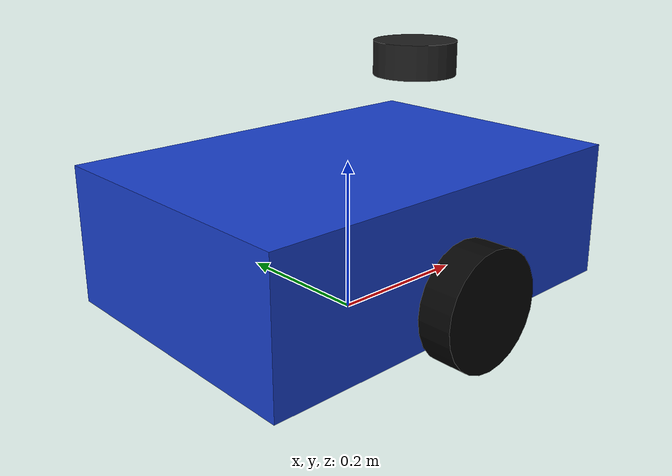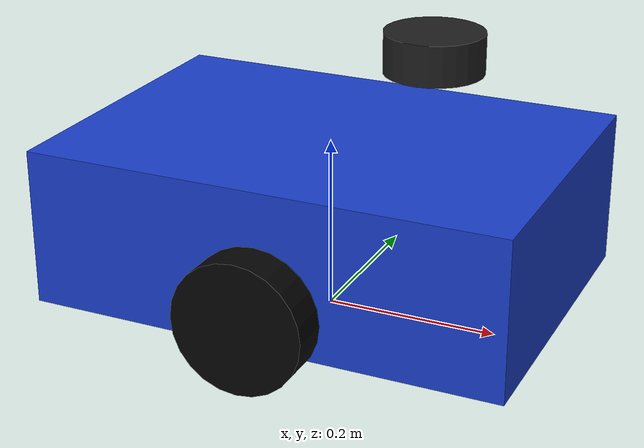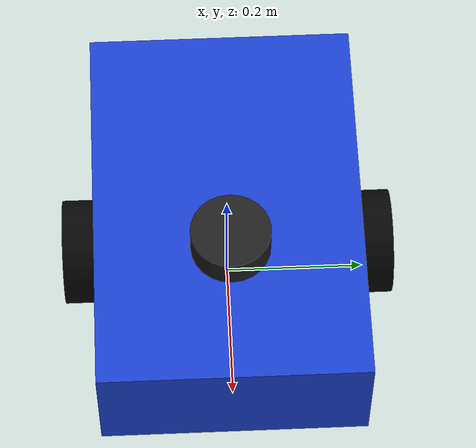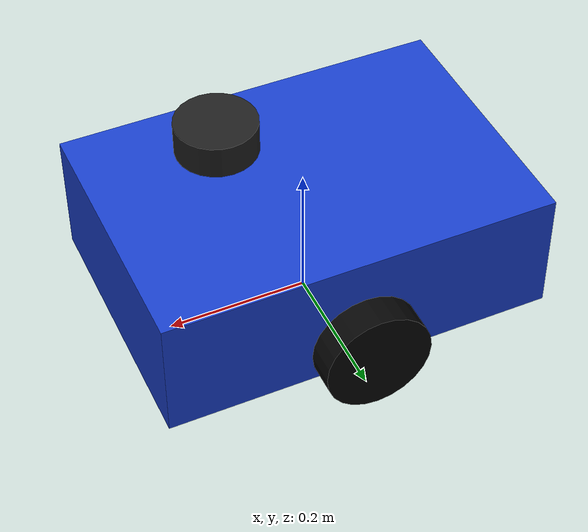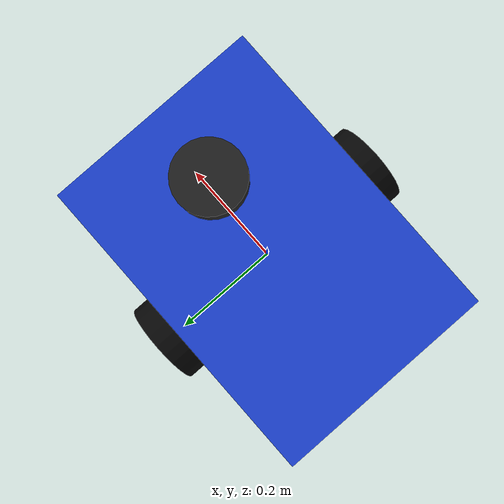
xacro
<?xml version="1.0"?>
<robot name="warehouse_bot" xmlns:xacro="http://www.ros.org/wiki/xacro">

  <xacro:property name="base_length" value="0.55"/>
  <xacro:property name="base_width" value="0.38"/>
  <xacro:property name="base_height" value="0.18"/>

  <xacro:property name="wheel_radius" value="0.075"/>
  <xacro:property name="wheel_width" value="0.045"/>

  <xacro:property name="caster_radius" value="0.045"/>
  <xacro:property name="lidar_radius" value="0.055"/>
  <xacro:property name="lidar_height" value="0.045"/>

  <link name="base_link">
    <visual>
      <origin xyz="0 0 0.12" rpy="0 0 0"/>
      <geometry>
        <box size="${base_length} ${base_width} ${base_height}"/>
      </geometry>
      <material name="blue">
        <color rgba="0.1 0.25 0.8 1.0"/>
      </material>
    </visual>

    <collision>
      <origin xyz="0 0 0.12" rpy="0 0 0"/>
      <geometry>
        <box size="${base_length} ${base_width} ${base_height}"/>
      </geometry>
    </collision>

    <inertial>
      <origin xyz="0 0 0.12" rpy="0 0 0"/>
      <mass value="8.0"/>
      <inertia ixx="0.12" ixy="0.0" ixz="0.0"
               iyy="0.22" iyz="0.0"
               izz="0.28"/>
    </inertial>
  </link>

  <link name="left_wheel_link">
    <visual>
      <origin xyz="0 0 0" rpy="1.5708 0 0"/>
      <geometry>
        <cylinder radius="${wheel_radius}" length="${wheel_width}"/>
      </geometry>
      <material name="black">
        <color rgba="0.02 0.02 0.02 1.0"/>
      </material>
    </visual>

    <collision>
      <origin xyz="0 0 0" rpy="1.5708 0 0"/>
      <geometry>
        <cylinder radius="${wheel_radius}" length="${wheel_width}"/>
      </geometry>
    </collision>

    <inertial>
      <origin xyz="0 0 0" rpy="0 0 0"/>
      <mass value="0.6"/>
      <inertia ixx="0.002" ixy="0.0" ixz="0.0"
               iyy="0.002" iyz="0.0"
               izz="0.003"/>
    </inertial>
  </link>

  <link name="right_wheel_link">
    <visual>
      <origin xyz="0 0 0" rpy="1.5708 0 0"/>
      <geometry>
        <cylinder radius="${wheel_radius}" length="${wheel_width}"/>
      </geometry>
      <material name="black">
        <color rgba="0.02 0.02 0.02 1.0"/>
      </material>
    </visual>

    <collision>
      <origin xyz="0 0 0" rpy="1.5708 0 0"/>
      <geometry>
        <cylinder radius="${wheel_radius}" length="${wheel_width}"/>
      </geometry>
    </collision>

    <inertial>
      <origin xyz="0 0 0" rpy="0 0 0"/>
      <mass value="0.6"/>
      <inertia ixx="0.002" ixy="0.0" ixz="0.0"
               iyy="0.002" iyz="0.0"
               izz="0.003"/>
    </inertial>
  </link>

  <link name="caster_link">
    <visual>
      <origin xyz="0 0 0" rpy="0 0 0"/>
      <geometry>
        <sphere radius="${caster_radius}"/>
      </geometry>
      <material name="gray">
        <color rgba="0.45 0.45 0.45 1.0"/>
      </material>
    </visual>

    <collision>
      <origin xyz="0 0 0" rpy="0 0 0"/>
      <geometry>
        <sphere radius="${caster_radius}"/>
      </geometry>
    </collision>

    <inertial>
      <origin xyz="0 0 0" rpy="0 0 0"/>
      <mass value="0.25"/>
      <inertia ixx="0.0003" ixy="0.0" ixz="0.0"
               iyy="0.0003" iyz="0.0"
               izz="0.0003"/>
    </inertial>
  </link>

  <link name="lidar_link">
    <visual>
      <origin xyz="0 0 0" rpy="0 0 0"/>
      <geometry>
        <cylinder radius="${lidar_radius}" length="${lidar_height}"/>
      </geometry>
      <material name="dark_gray">
        <color rgba="0.12 0.12 0.12 1.0"/>
      </material>
    </visual>

    <collision>
      <origin xyz="0 0 0" rpy="0 0 0"/>
      <geometry>
        <cylinder radius="${lidar_radius}" length="${lidar_height}"/>
      </geometry>
    </collision>

    <inertial>
      <origin xyz="0 0 0" rpy="0 0 0"/>
      <mass value="0.3"/>
      <inertia ixx="0.0004" ixy="0.0" ixz="0.0"
               iyy="0.0004" iyz="0.0"
               izz="0.0004"/>
    </inertial>
  </link>

  <joint name="left_wheel_joint" type="continuous">
    <parent link="base_link"/>
    <child link="left_wheel_link"/>
    <origin xyz="0 0.215 0.075" rpy="0 0 0"/>
    <axis xyz="0 1 0"/>
  </joint>

  <joint name="right_wheel_joint" type="continuous">
    <parent link="base_link"/>
    <child link="right_wheel_link"/>
    <origin xyz="0 -0.215 0.075" rpy="0 0 0"/>
    <axis xyz="0 1 0"/>
  </joint>

  <joint name="caster_joint" type="fixed">
    <parent link="base_link"/>
    <child link="caster_link"/>
    <origin xyz="0.22 0 0.045" rpy="0 0 0"/>
  </joint>

  <joint name="lidar_joint" type="fixed">
    <parent link="base_link"/>
    <child link="lidar_link"/>
    <origin xyz="0.12 0 0.32" rpy="0 0 0"/>
  </joint>

  <gazebo>
    <plugin name="diff_drive_controller" filename="libgazebo_ros_diff_drive.so">
      <ros>
        <namespace>/</namespace>
      </ros>

      <left_joint>left_wheel_joint</left_joint>
      <right_joint>right_wheel_joint</right_joint>

      <wheel_separation>0.43</wheel_separation>
      <wheel_diameter>0.15</wheel_diameter>

      <max_wheel_torque>20</max_wheel_torque>
      <max_wheel_acceleration>1.0</max_wheel_acceleration>

      <command_topic>cmd_vel</command_topic>
      <odometry_topic>odom</odometry_topic>
      <odometry_frame>odom</odometry_frame>
      <robot_base_frame>base_link</robot_base_frame>

      <publish_odom>true</publish_odom>
      <publish_odom_tf>true</publish_odom_tf>
      <publish_wheel_tf>true</publish_wheel_tf>
    </plugin>
  </gazebo>
    <gazebo reference="lidar_link">
    <sensor name="lidar_sensor" type="ray">
      <pose>0 0 0 0 0 0</pose>
      <visualize>true</visualize>
      <update_rate>10</update_rate>

      <ray>
        <scan>
          <horizontal>
            <samples>360</samples>
            <resolution>1</resolution>
            <min_angle>-3.14159</min_angle>
            <max_angle>3.14159</max_angle>
          </horizontal>
        </scan>

        <range>
          <min>0.12</min>
          <max>8.0</max>
          <resolution>0.01</resolution>
        </range>

        <noise>
          <type>gaussian</type>
          <mean>0.0</mean>
          <stddev>0.01</stddev>
        </noise>
      </ray>

      <plugin name="gazebo_ros_lidar_controller" filename="libgazebo_ros_ray_sensor.so">
        <ros>
          <namespace>/</namespace>
          <remapping>~/out:=scan</remapping>
        </ros>
        <output_type>sensor_msgs/LaserScan</output_type>
        <frame_name>lidar_link</frame_name>
      </plugin>
    </sensor>
  </gazebo>

</robot>
